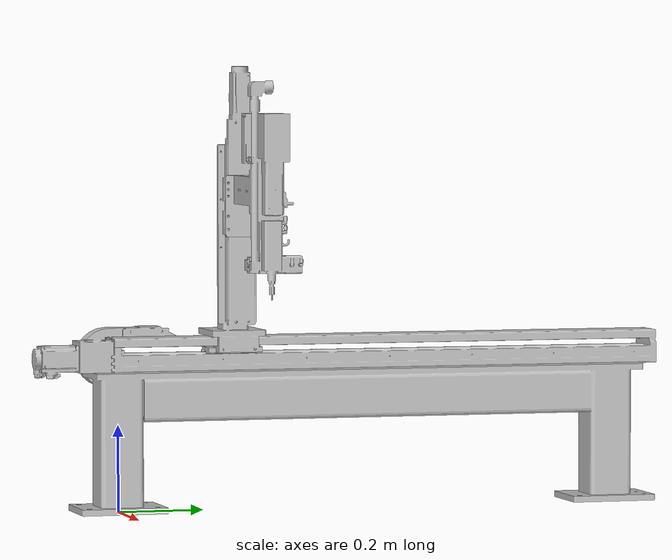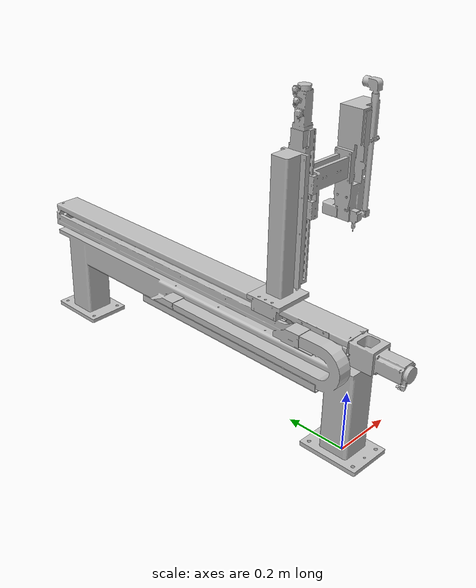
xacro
<?xml version="1.0"?>
<robot xmlns:xacro="http://www.ros.org/wiki/xacro" name="m_4730788_001">
    <xacro:arg name="initial_positions_file" default="initial_positions.yaml" />

    <!-- Import m_4730788_001 urdf file -->
    <xacro:include filename="$(find m_4730788_001_description)/urdf/m_4730788_001.urdf" />

    <!-- Import control_xacro -->
    <xacro:include filename="m_4730788_001.ros2_control.xacro" />

    <xacro:m_4730788_001_ros2_control name="FakeSystem" initial_positions_file="$(arg initial_positions_file)"/>

</robot>

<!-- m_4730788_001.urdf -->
<!-- |    This document was autogenerated by xacro from /home/ipa-hsd/projects/denso/ros2_ws/src/component_models/codenser/m_4730788_001/m_4730788_001_description/urdf/m_4730788_001.urdf.xacro | -->
<!-- |    EDITING THIS FILE BY HAND IS NOT RECOMMENDED                                 | -->
<robot name="m_4730788_001">
  <link name="m_4730788_001_base_link">
    <inertial>
      <origin rpy="0 0 0" xyz="-0.0079588 0.53745 0.29257"/>
      <mass value="25.945"/>
      <inertia ixx="3.1047" ixy="7.4183E-05" ixz="-0.00021729" iyy="0.061286" iyz="0.0088416" izz="3.1103"/>
    </inertial>
    <visual>
      <origin rpy="0 0 0" xyz="0 0 0"/>
      <geometry>
        <mesh filename="package://m_4730788_001_description/meshes/base_link.STL"/>
      </geometry>
      <material name="">
        <color rgba="0.75294 0.75294 0.75294 1"/>
      </material>
    </visual>
    <collision>
      <origin rpy="0 0 0" xyz="0 0 0"/>
      <geometry>
        <mesh filename="package://m_4730788_001_description/meshes/base_link.STL"/>
      </geometry>
    </collision>
  </link>
  <link name="m_4730788_001_link_1">
    <inertial>
      <origin rpy="0 0 0" xyz="0.035968 0.27493 0.22182"/>
      <mass value="5.6095"/>
      <inertia ixx="0.069776" ixy="-4.5144E-06" ixz="-0.00039418" iyy="0.068863" iyz="-3.9361E-06" izz="0.0062752"/>
    </inertial>
    <visual>
      <origin rpy="0 0 0" xyz="0 0 0"/>
      <geometry>
        <mesh filename="package://m_4730788_001_description/meshes/link_1.STL"/>
      </geometry>
      <material name="">
        <color rgba="0.75294 0.75294 0.75294 1"/>
      </material>
    </visual>
    <collision>
      <origin rpy="0 0 0" xyz="0 0 0"/>
      <geometry>
        <mesh filename="package://m_4730788_001_description/meshes/link_1.STL"/>
      </geometry>
    </collision>
  </link>
  <joint name="m_4730788_001_joint_1" type="prismatic">
    <origin rpy="0 0 0" xyz="0 -0.0041461 0.37535"/>
    <parent link="m_4730788_001_base_link"/>
    <child link="m_4730788_001_link_1"/>
    <axis xyz="0 1 0"/>
    <limit effort="0.1" lower="0" upper="1.0" velocity="0.1"/>
  </joint>
  <link name="m_4730788_001_link_2">
    <inertial>
      <origin rpy="0 0 0" xyz="0.1819 1.4438E-05 -0.12956"/>
      <mass value="1.8798"/>
      <inertia ixx="0.0025187" ixy="-1.2207E-05" ixz="8.5334E-07" iyy="0.0027656" iyz="1.0645E-07" izz="0.0012183"/>
    </inertial>
    <visual>
      <origin rpy="0 0 0" xyz="0 0 0"/>
      <geometry>
        <mesh filename="package://m_4730788_001_description/meshes/link_2.STL"/>
      </geometry>
      <material name="">
        <color rgba="0.75294 0.75294 0.75294 1"/>
      </material>
    </visual>
    <collision>
      <origin rpy="0 0 0" xyz="0 0 0"/>
      <geometry>
        <mesh filename="package://m_4730788_001_description/meshes/link_2.STL"/>
      </geometry>
    </collision>
  </link>
  <joint name="m_4730788_001_joint_2" type="prismatic">
    <origin rpy="0 0 0" xyz="0.074922 0.27494 0.46365"/>
    <parent link="m_4730788_001_link_1"/>
    <child link="m_4730788_001_link_2"/>
    <axis xyz="0 0 1"/>
    <limit effort="0.1" lower="-0.2" upper="0.25" velocity="0.1"/>
  </joint>
</robot>
